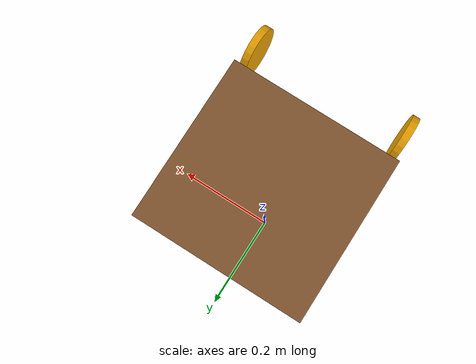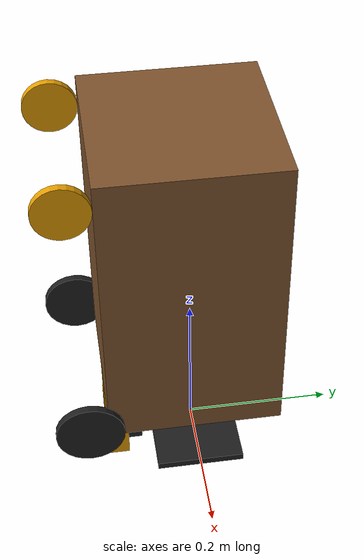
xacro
<?xml version="1.0"?>
<robot name="box_bot" xmlns:xacro="http://www.ros.org/wiki/xacro">
  <!-- Constants for robot dimensions -->
  <xacro:property name="PI" value="3.1415926535897931"/>

  <!-- Import Rviz colors -->
  <xacro:include filename="$(find office_bot)/urdf/materials.xacro" />

  <!-- Base Link -->
  <link name="base_link">

    <visual name="box">
      <origin rpy="0 0 0" xyz="-0.18 0 0.185"/>
      <geometry>
        <box size="0.4 0.24 0.23"/>
      </geometry>
      <material name="brown"/>
    </visual>

    <visual name="left_caster">
      <origin rpy="1.5708 0 0" xyz="-0.34500  0.11109 0.035"/>
      <geometry>
        <cylinder length="0.01" radius="0.035"/>
      </geometry>
    </visual>

    <visual name="right_caster">
      <origin rpy="1.5708 0 0" xyz="-0.34500 -0.11109 0.035"/>
      <geometry>
        <cylinder length="0.01" radius="0.035"/>
      </geometry>
    </visual>

    <visual name="neck">
      <origin rpy="0 0 0" xyz="0.06 0 0.0725"/>
      <geometry>
        <box size="0.12 0.025 0.005"/>
      </geometry>
    </visual>

    <visual name="head">
      <origin rpy="0 0 0" xyz="0.12 0 0.085"/>
      <geometry>
        <box size="0.07 0.07 0.03"/>
      </geometry>
    </visual>
  </link>

  <link name="left_wheel_link">
    <collision>
      <origin xyz="0 0.0 0" rpy="0 1.5707 1.5707"/>
      <geometry>
        <cylinder length="0.01" radius="0.045"/>
      </geometry>
    </collision>
    <visual>
      <origin xyz="0 0.0 0" rpy="0 1.5707 1.5707"/>
      <geometry>
        <cylinder length="0.01" radius="0.045"/>
      </geometry>
      <material name="black"/>
    </visual>
  </link>

  <link name="right_wheel_link">
    <collision>
      <origin xyz="0 0.0 0" rpy="0 1.5707 1.5707"/>
      <geometry>
        <cylinder length="0.01" radius="0.045"/>
      </geometry>
    </collision>
    <visual>
      <origin xyz="0 0.0 0" rpy="0 1.5707 1.5707"/>
      <geometry>
        <cylinder length="0.01" radius="0.045"/>
      </geometry>
      <material name="black"/>
    </visual>
  </link>

  <link name="laser_link">
    <visual>
      <origin xyz="0 0.0 0" rpy="0 0 0"/>
      <geometry>
        <cylinder length="0.05" radius="0.03"/>
      </geometry>
      <material name="black"/>
    </visual>
  </link>

  <link name="tango">
    <visual>
      <origin xyz="0 0.0 0" rpy="0 0 0"/>
      <geometry>
         <box size="0.2 0.12 0.01"/>
      </geometry>
      <material name="black"/>
    </visual>
  </link>

  <joint type="revolute" name="motor_1_joint">
    <origin rpy="0 0 0" xyz="0.0 -0.13 0.045"/>
    <child link="right_wheel_link">right_wheel</child>
    <parent link="base_link">base_link</parent>
    <axis xyz="0 1 0"/>
    <limit effort="100" velocity="100.0"  lower="-5000" upper="5000" />
  </joint>

  <joint type="revolute" name="motor_2_joint">
    <origin rpy="0 0 0" xyz="0.0 0.13 0.045"/>
    <child link="left_wheel_link">left_wheel</child>
    <parent link="base_link">base_link</parent>
    <axis xyz="0 1 0"/>
    <limit effort="100" velocity="100.0"  lower="-5000" upper="5000" />
  </joint>

  <joint type="fixed" name="base_to_laser_link_joint">
    <origin rpy="0 0 0" xyz="0.12 0 0.095"/>
    <child link="laser_link"/>
    <parent link="base_link"/>
  </joint>

  <joint type="fixed" name="tango_to_base_joint">
    <origin rpy="0 1.571 1.571" xyz="0 -0.195 0.12"/>
    <child link="base_link"/>
    <parent link="tango"/>
  </joint>

</robot>
